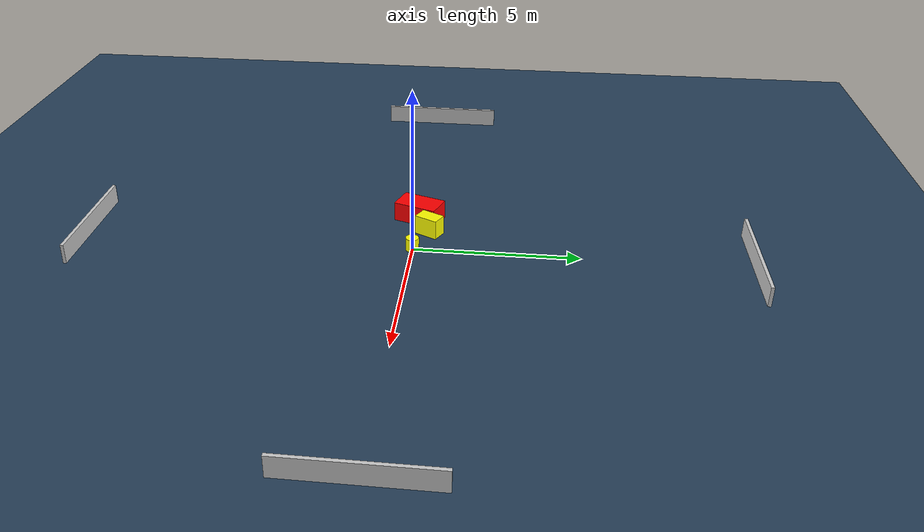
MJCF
<?xml version="1.0" ?>
<mujoco model="generated_environment">
  <option timestep="0.01" integrator="RK4" cone="elliptic"/>
  <default>
    <geom density="1"/>
  </default>
  <asset>
    <texture builtin="gradient" height="3072" name="skybox" rgb1="0.3 0.5 0.7" rgb2="0 0 0" type="skybox" width="512"/>
    <texture builtin="checker" height="300" name="groundplane" rgb1="0.2 0.3 0.4" rgb2="0.1 0.2 0.3" type="2d" width="300"/>
    <material name="groundplane" reflectance="0.2" texrepeat="5 5" texture="groundplane"/>
  </asset>
  <worldbody>
    <light dir="0 0 -1" directional="true" pos="0 0 1.5"/>
    <geom condim="3" friction="0.5 0.005 0.001" material="groundplane" name="floor" pos="0 0 0" size="0 0 0.05" type="plane"/>
    <body name="walls">
      <geom name="wall_1" condim="4" pos="-10.0 0.0 0.3" rgba="0.800000011920929 0.800000011920929 0.800000011920929 1.0" size="0.05 2.0 0.3" type="box"/>
      <geom name="wall_2" condim="4" pos="10.0 0.0 0.3" rgba="0.800000011920929 0.800000011920929 0.800000011920929 1.0" size="0.05 2.0 0.3" type="box"/>
      <geom name="wall_3" condim="4" pos="0.0 -10.0 0.3" rgba="0.800000011920929 0.800000011920929 0.800000011920929 1.0" size="2.0 0.05 0.3" type="box"/>
      <geom name="wall_4" condim="4" pos="0.0 10.0 0.3" rgba="0.800000011920929 0.800000011920929 0.800000011920929 1.0" size="2.0 0.05 0.3" type="box"/>
    </body>
    <body name="robot">
      <joint name="joint_x" type="slide" pos="0 0 0" axis="1 0 0"/>
      <joint name="joint_y" type="slide" pos="0 0 0" axis="0 1 0"/>
      <geom name="robot" type="cylinder" pos="0.0 0.0 0.2" size="0.2 0.2 0.0" mass="5.0" friction="1.0 0.005 0.0001" condim="4" rgba="1.0 1.0 0.0 1.0"/>
    </body>
    <body name="obstacle_1_movable">
      <geom name="obstacle_1_movable" condim="4" pos="-1.0626647119150496 0.4098182276026953 0.3" euler="0 0 242.55472137244027" friction="0.0 0.005 0.001" rgba="1.0 1.0 0.0 1.0" size="0.3705513121262607 0.23658696616756253 0.3" type="box" mass="0.1"/>
      <joint type="free"/>
    </body>
    <body name="obstacle_2_static">
      <geom name="obstacle_2_static" condim="4" pos="-1.9749317475520811 0.006997377185707588 0.3" euler="0 0 340.5161757825006" friction="0.0 0.005 0.001" rgba="1.0 0.0 0.0 1.0" size="0.40972462949278987 0.6841378632612293 0.3" type="box"/>
    </body>
  </worldbody>
  <actuator>
    <motor name="actuator_x" joint="joint_x" gear="1" ctrlrange="-1 1"/>
    <motor name="actuator_y" joint="joint_y" gear="1" ctrlrange="-1 1"/>
  </actuator>
</mujoco>
